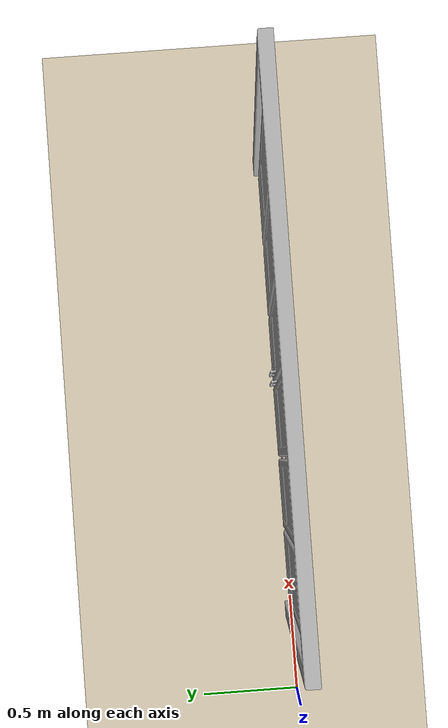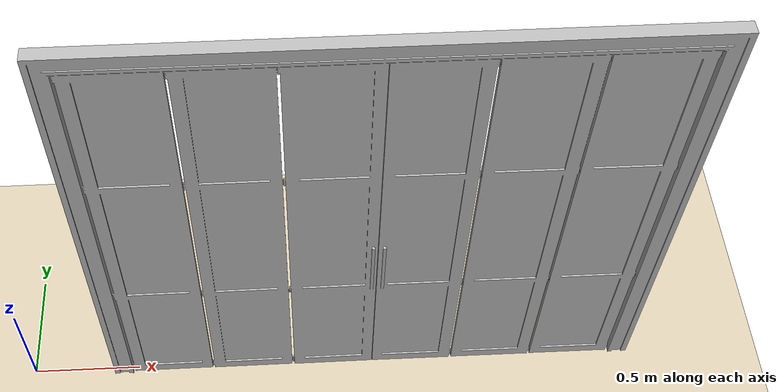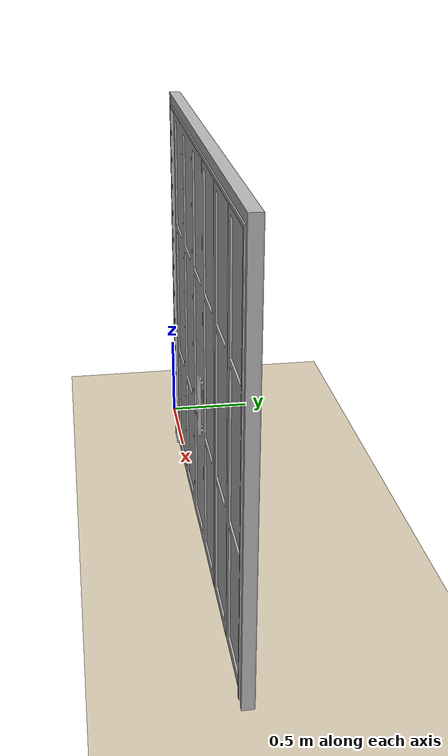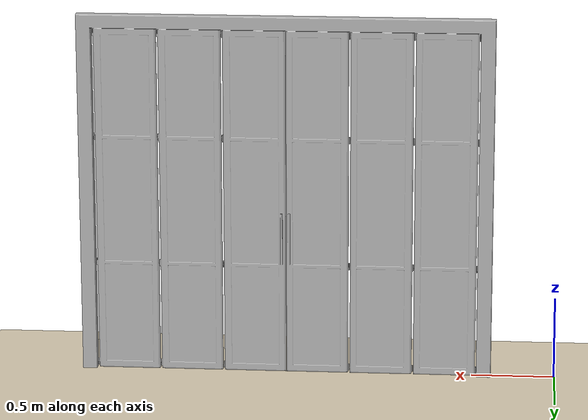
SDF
<sdf version='1.10'>
  <world name='obstacle_avoidance_test'>
    <gui>
      <camera name='gzclient_camera'>
        <pose>-1.5 -2 2.5 0 0.50000000000000011 1</pose>
      </camera>
    </gui>
    <gravity>0 0 -9.8000000000000007</gravity>
    <magnetic_field>6.0000000000000002e-06 2.3e-05 -4.1999999999999998e-05</magnetic_field>
    <atmosphere type='adiabatic'/>
    <physics name='default_physics' default='false' type='ode'>
      <max_step_size>0.001</max_step_size>
      <real_time_factor>1</real_time_factor>
      <real_time_update_rate>1000</real_time_update_rate>
    </physics>
    <scene>
      <ambient>0.5 0.5 0.5 1</ambient>
      <background>0.699999988 0.699999988 0.699999988 1</background>
      <shadows>false</shadows>
      <grid>true</grid>
      <origin_visual>false</origin_visual>
    </scene>
    <model name='ground_plane'>
      <static>true</static>
      <link name='link'>
        <collision name='collision'>
          <geometry>
            <plane>
              <normal>0 0 1</normal>
              <size>1 1</size>
            </plane>
          </geometry>
          <surface>
            <friction>
              <ode/>
            </friction>
            <bounce/>
            <contact/>
          </surface>
        </collision>
        <visual name='visual'>
          <geometry>
            <plane>
              <normal>0 0 1</normal>
              <size>100 100</size>
            </plane>
          </geometry>
          <material>
            <ambient>0.850000024 0.800000012 0.699999988 1</ambient>
            <diffuse>0.850000024 0.800000012 0.699999988 1</diffuse>
          </material>
        </visual>
        <pose>0 0 0 0 0 0</pose>
        <inertial>
          <pose>0 0 0 0 0 0</pose>
          <mass>1</mass>
          <inertia>
            <ixx>1</ixx>
            <ixy>0</ixy>
            <ixz>0</ixz>
            <iyy>1</iyy>
            <iyz>0</iyz>
            <izz>1</izz>
          </inertia>
        </inertial>
        <enable_wind>false</enable_wind>
      </link>
      <pose>0 0 0 0 0 0</pose>
      <self_collide>false</self_collide>
    </model>
    <include>
      <uri>model://aws_robomaker_residential_FoldingDoor_01</uri>
      <name>obstacle_wall</name>
      <pose>1.6319806575775146 4.1983935261669103e-06 0 0 0 1.5708000357176291</pose>
    </include>
    <light name='sun' type='directional'>
      <pose>0 0 10 0 0 0</pose>
      <cast_shadows>true</cast_shadows>
      <intensity>1</intensity>
      <direction>1 0 -0.90000000000000002</direction>
      <diffuse>0.800000012 0.800000012 0.800000012 1</diffuse>
      <specular>0.200000003 0.200000003 0.200000003 1</specular>
      <attenuation>
        <range>1000</range>
        <linear>0.01</linear>
        <constant>0.90000000000000002</constant>
        <quadratic>0.001</quadratic>
      </attenuation>
      <spot>
        <inner_angle>0</inner_angle>
        <outer_angle>0</outer_angle>
        <falloff>0</falloff>
      </spot>
    </light>
  </world>
</sdf>

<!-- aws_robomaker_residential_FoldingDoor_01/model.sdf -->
<sdf version="1.6">
  <model name="aws_robomaker_residential_FoldingDoor_01">
    <link name="link">
      <inertial>
        <mass>1</mass>
        <inertia>
          <ixx>0.01</ixx>
          <ixy>0</ixy>
          <ixz>0</ixz>
          <iyy>0.01</iyy>
          <iyz>0</iyz>
          <izz>0.01</izz>
        </inertia>
      </inertial>
      <collision name="collision">
        <geometry>
          <mesh>
            <uri>model://aws_robomaker_residential_FoldingDoor_01/meshes/aws_FoldingDoor_01_collision.DAE</uri>
            <scale>1 1 1</scale>
          </mesh>
        </geometry>
      </collision>
      <visual name="visual">
        <geometry>
          <mesh>
            <uri>model://aws_robomaker_residential_FoldingDoor_01/meshes/aws_FoldingDoor_01_visual.DAE</uri>
          </mesh>
        </geometry>
        <meta>
          <layer> 2 </layer>
        </meta>
      </visual>
    </link>
    <static>1</static>
  </model>
</sdf>
